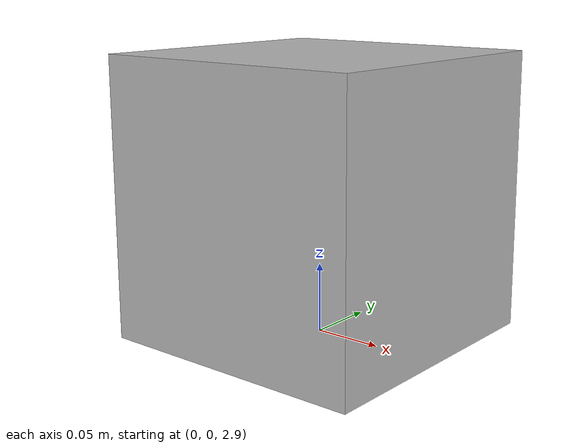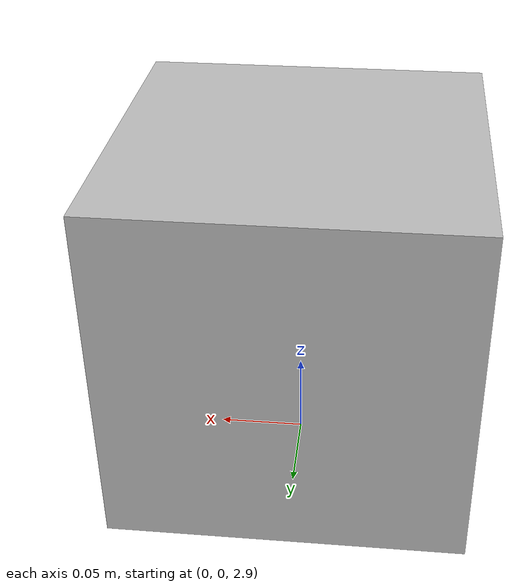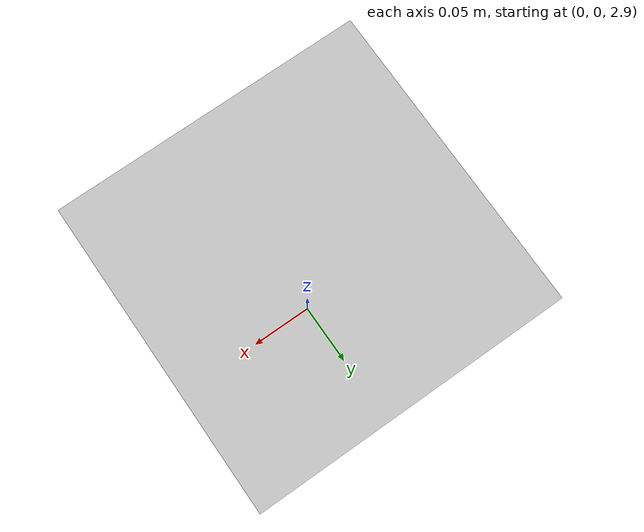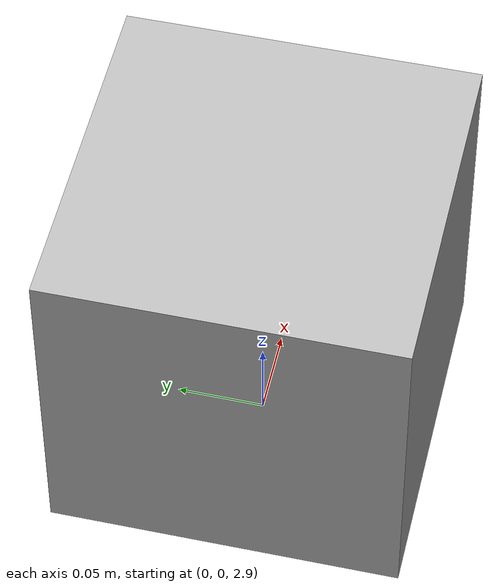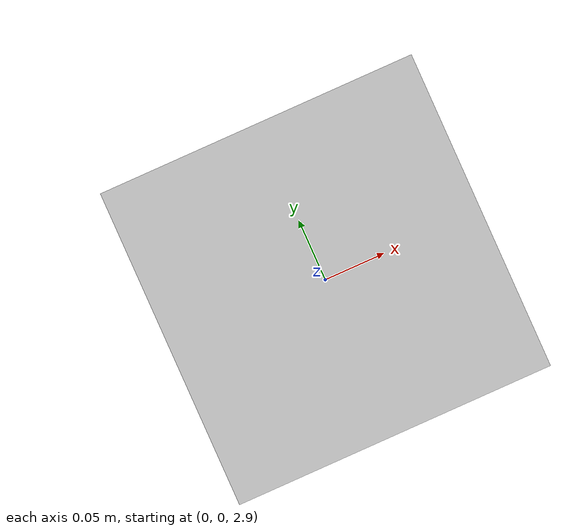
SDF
<?xml version="1.0" ?>
<sdf version="1.11">
  <world name="mars">

    <physics name="250hz" type="ignored">
      <max_step_size>0.004</max_step_size>
      <real_time_factor>1.0</real_time_factor>
    </physics>

    <plugin filename="gz-sim-physics-system"
            name="gz::sim::systems::Physics"/>
    <plugin filename="gz-sim-user-commands-system"
            name="gz::sim::systems::UserCommands"/>
    <plugin filename="gz-sim-scene-broadcaster-system"
            name="gz::sim::systems::SceneBroadcaster"/>

    <gravity>0 0 -9.8</gravity>

    <light type="directional" name="sun">
      <pose>0 0 10 0 0 0</pose>
      <diffuse>0.8 0.8 0.8 1</diffuse>
      <direction>-0.5 0.1 -0.9</direction>
    </light>

    <model name="ground_plane">
      <static>true</static>
      <link name="link">
        <collision name="collision">
          <geometry><plane><normal>0 0 1</normal></plane></geometry>
        </collision>
      </link>
    </model>

    <!-- Cubo de 20 cm y 2 kg soltado desde 3 m. Con gravedad -9.8 tarda unos
         780 ms en tocar el suelo, tiempo de sobra para que un suscriptor vea
         la Z bajar antes del impacto. -->
    <model name="box">
      <pose>0 0 3 0 0 0</pose>
      <link name="link">
        <inertial>
          <mass>2.0</mass>
          <inertia>
            <ixx>0.01333</ixx><iyy>0.01333</iyy><izz>0.01333</izz>
            <ixy>0</ixy><ixz>0</ixz><iyz>0</iyz>
          </inertia>
        </inertial>
        <collision name="collision">
          <geometry><box><size>0.2 0.2 0.2</size></box></geometry>
        </collision>
        <visual name="visual">
          <geometry><box><size>0.2 0.2 0.2</size></box></geometry>
        </visual>
      </link>
    </model>

  </world>
</sdf>
